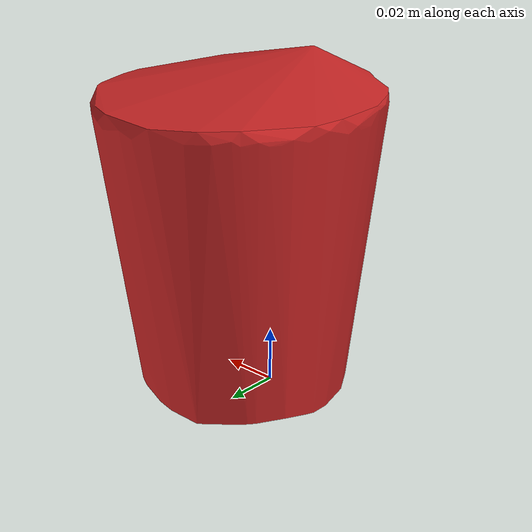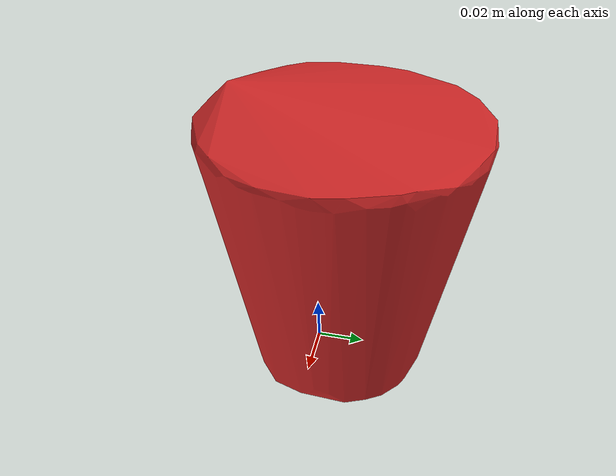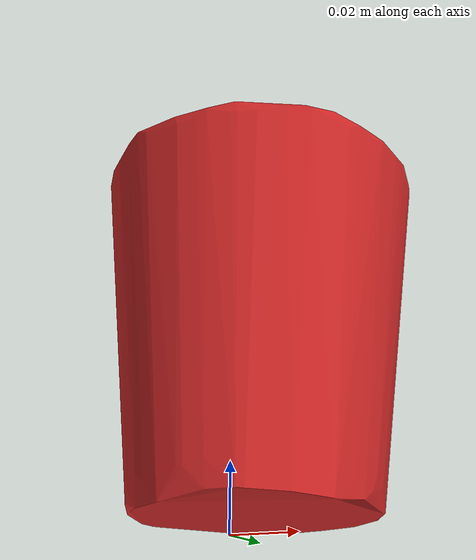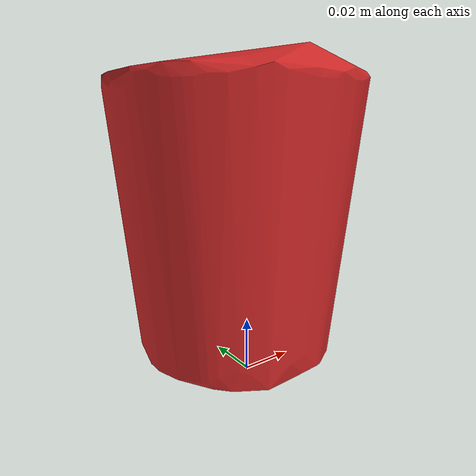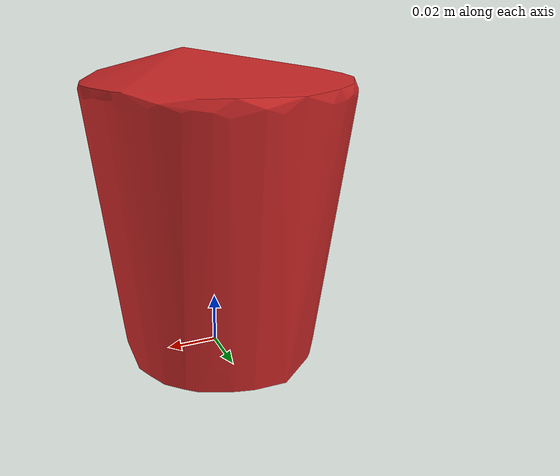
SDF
<?xml version='1.0'?>
<sdf version="1.4">
  <model name="red_cup">
    <static>false</static>
    <link name="link">
      <inertial>
        <pose>0.002873838345689693 0.011700821039438036 0.06464279957987148 3.1272430215901004 -0.00832242753377183 -2.925594364481809</pose>
        <mass>0.06098517909711497</mass>
        <inertia>
          <ixx>8.526402062115226e-05</ixx>
          <ixy>-3.668789927310592e-21</ixy>
          <ixz>4.9064254227971935e-21</ixz>
          <iyy>8.456803570002451e-05</iyy>
          <iyz>-2.1230498103730406e-20</iyz>
          <izz>5.6314602929607353e-05</izz>
        </inertia>
      </inertial>
      <collision name="collision">
        <geometry>
          <mesh>
            <!-- Use a downsampled mesh for collisions -->
            <uri>model:///red_cup/red_cup_250_collision.obj</uri>
	        </mesh>
        </geometry>
        <surface>
      </surface>
      </collision>
      <visual name="visual">
        <geometry>
          <mesh>
            <uri>model:///red_cup/optimized_tsdf_texture_mapped_mesh.obj</uri>
	        </mesh>
        </geometry>
        <material>
          <script>
            <uri>model:///red_cup/red_cup.material</uri>
            <name>red_cup</name>
          </script>
        </material>
      </visual>
    </link>
  </model>
</sdf>
